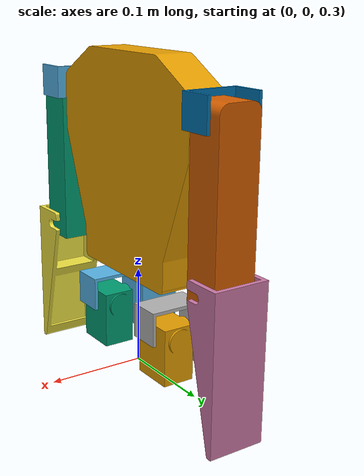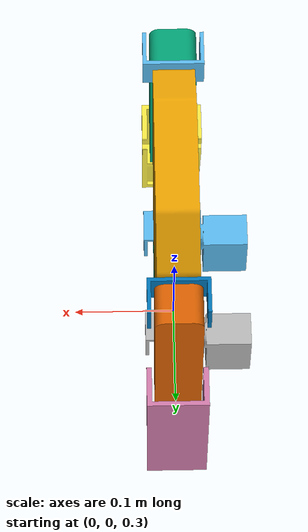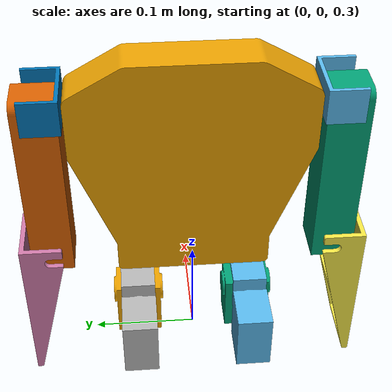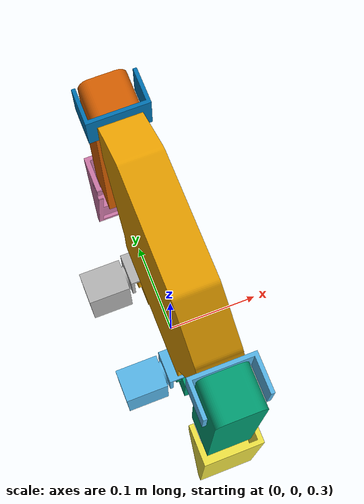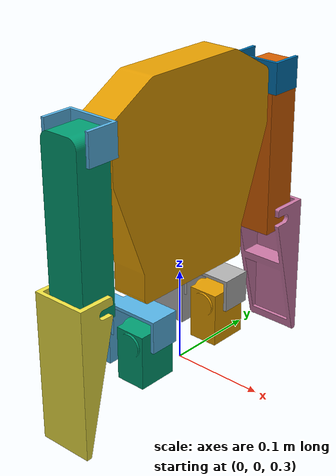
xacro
<?xml version="1.0"?>
<robot name="Bogobot_V1" xmlns:xacro="http://www.ros.org/wiki/xacro">
    <xacro:include filename="humanoid_links.xacro"/>
    <!--LINKS-->
    <!--caja toraxica-->
    <xacro:base_link name="chest" x = "0" y = "0" z = "0.51" row = "0" pitch = "0" yaw = "0"/>

    <!--brazo izquierdo-->
    <xacro:shoulder_link_base name="link_base_left_shoulder" x = "0.0" y = "-0.0185" z = "0.0" row = "0" pitch = "0" yaw = "0"/>
    <xacro:arm_link name="link_left_arm" x = "0.0" y = "0" z = "-0.082" row = "0" pitch = "0" yaw = "0"/>
    <xacro:palm_link name="link_left_palm" x = "0.0" y = "-0.01" z = "-0.062" row = "0" pitch = "0" yaw = "0"/>

    <!--brazo derecho-->
    <xacro:shoulder_link_base name="link_base_right_shoulder" x = "0.0" y = "0.0185" z = "0.0" row = "0" pitch = "0" yaw = "${pi}"/>
    <xacro:arm_link name="link_right_arm" x = "0.0" y = "0" z = "-0.082" row = "0" pitch = "0" yaw = "${pi}"/>
    <xacro:palm_link name="link_right_palm" x = "0.0" y = "0.01" z = "-0.062" row = "0" pitch = "0" yaw = "${pi}"/>

    <!--pierna derecha-->
    <xacro:hip_metal_link name="link_right_hip_metal" x = "0.0" y = "0.0" z = "-0.0175" row = "0" pitch = "0" yaw = "0"/>
    <xacro:motor_double_join name="link_right_hip_motor" x = "0.0" y = "0.0" z = "-0.0225" row = "0" pitch = "0" yaw = "0"/>

    <!--pierna izquierda-->
    <xacro:hip_metal_link name="link_left_hip_metal" x = "0.0" y = "0.0" z = "-0.0175" row = "0" pitch = "0" yaw = "0"/>
    <xacro:motor_double_join name="link_left_hip_motor" x = "0.0" y = "0.0" z = "-0.0225" row = "0" pitch = "0" yaw = "0"/>

    <!--JOINTS-->
    <!--hombro derecho-->
    <joint name="q1" type="revolute">
        <origin rpy="0 0 0" xyz="0 -0.11 0.58" />
        <parent link="chest" />
        <child link="link_base_left_shoulder" />
        <axis xyz="0 1 0" />
        <limit effort="2.5" lower="${-2*pi}" upper="${2*pi}" velocity="5.76"/>
    </joint>
    <!--brazo derecho-->
    <joint name="q3" type="revolute">
        <origin rpy="0 0 0" xyz="0 -0.024 0" />
        <parent link="link_base_left_shoulder" />
        <child link="link_left_arm" />
        <axis xyz="1 0 0" />
        <limit effort="2.5" lower="${-2*pi}" upper="${2*pi}" velocity="5.76"/>
    </joint>
    <!--palma derecho-->
    <joint name="q4" type="revolute">
        <origin rpy="0 0 0" xyz="0 0 -0.164" />
        <parent link="link_left_arm" />
        <child link="link_left_palm" />
        <axis xyz="1 0 0" />
        <limit effort="2.5" lower="${-2*pi}" upper="${2*pi}" velocity="5.76"/>
    </joint>

    <!--hombro izquierdo-->
    <joint name="q2" type="revolute">
        <origin rpy="0 0 0" xyz="0 0.11 0.58" />
        <parent link="chest" />
        <child link="link_base_right_shoulder" />
        <axis xyz="0 1 0" />
        <limit effort="2.5" lower="${-2*pi}" upper="${2*pi}" velocity="5.76"/>
    </joint>
    <!--brazo izquierdo-->
    <joint name="q5" type="revolute">
        <origin rpy="0 0 0" xyz="0 0.024 0" />
        <parent link="link_base_right_shoulder" />
        <child link="link_right_arm" />
        <axis xyz="1 0 0" />
        <limit effort="2.5" lower="${-2*pi}" upper="${2*pi}" velocity="5.76"/>
    </joint>
    <!--palma izquierdo-->
    <joint name="q6" type="revolute">
        <origin rpy="0 0 0" xyz="0 0 -0.164" />
        <parent link="link_right_arm" />
        <child link="link_right_palm" />
        <axis xyz="1 0 0" />
        <limit effort="2.5" lower="${-2*pi}" upper="${2*pi}" velocity="5.76"/>
    </joint>

    <!--pierna derecha-->
    <joint name="q7" type="revolute">
        <origin rpy="0 0 0" xyz="0 0.055 0.3825" />
        <parent link="chest" />
        <child link="link_right_hip_metal" />
        <axis xyz="0 0 1" />
        <limit effort="2.5" lower="${-2*pi}" upper="${2*pi}" velocity="5.76"/>
    </joint>

    <joint name="q9" type="revolute">
        <origin rpy="0 0 0" xyz="0 0 -0.025" />
        <parent link="link_right_hip_metal" />
        <child link="link_right_hip_motor" />
        <axis xyz="1 0 0" />
        <limit effort="2.5" lower="${-2*pi}" upper="${2*pi}" velocity="5.76"/>
    </joint>

    <!--pierna izquierda-->
    <joint name="q8" type="revolute">
        <origin rpy="0 0 0" xyz="0 -0.055 0.3825" />
        <parent link="chest" />
        <child link="link_left_hip_metal" />
        <axis xyz="0 0 1" />
        <limit effort="2.5" lower="${-2*pi}" upper="${2*pi}" velocity="5.76"/>
    </joint>

    <joint name="q10" type="revolute">
        <origin rpy="0 0 0" xyz="0 0 -0.025" />
        <parent link="link_left_hip_metal" />
        <child link="link_left_hip_motor" />
        <axis xyz="1 0 0" />
        <limit effort="2.5" lower="${-2*pi}" upper="${2*pi}" velocity="5.76"/>
    </joint>

</robot>

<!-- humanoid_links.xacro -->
<robot xmlns:xacro="http://www.ros.org/wiki/xacro">

    <!--links-->
	<xacro:macro name="base_link" params="name x y z row pitch yaw">
		<link name="${name}">
			<collision>
                		<origin xyz="${x} ${y} ${z}" rpy="${row} ${pitch} ${yaw}"  />
                		<geometry>
                    			<mesh filename="package://bogobot_rviz/meshes/torax_b4.STL" scale="0.001 0.001 0.001"/>
                		</geometry>
            		</collision>
			<visual>
                		<origin xyz="${x} ${y} ${z}" rpy="${row} ${pitch} ${yaw}" />
                		<geometry>
                				<!--box size="0.055 0.22 0.3"/-->
                				<!--box size="0.055 0.22 0.22"/-->
                    			<mesh filename="package://bogobot_rviz/meshes/torax_b4.STL" scale="0.001 0.001 0.001"/>
                		</geometry>
            		</visual>
		</link>
	</xacro:macro>

	<xacro:macro name="motor_28" params="name x y z row pitch yaw">
		<link name="${name}">
			<collision>
                		<origin xyz="${x} ${y} ${z}" rpy="${row} ${pitch} ${yaw}"  />
                		<geometry>
                    			<mesh filename="package://bogobot_rviz/meshes/MOTOR_28.STL" scale="0.001 0.001 0.001"/>
                		</geometry>
            		</collision>
			<visual>
                		<origin xyz="${x} ${y} ${z}" rpy="${row} ${pitch} ${yaw}" />
                		<geometry>
                    			<mesh filename="package://bogobot_rviz/meshes/MOTOR_28.STL" scale="0.001 0.001 0.001"/>
                		</geometry>
            		</visual>
		</link>
	</xacro:macro>

	<xacro:macro name="shoulder_link_base" params="name x y z row pitch yaw">
		<link name="${name}">
			<collision>
                		<origin xyz="${x} ${y} ${z}" rpy="${row} ${pitch} ${yaw}"  />
                		<geometry>
                    			<mesh filename="package://bogobot_rviz/meshes/metal_hombro_b4.STL" scale="0.001 0.001 0.001"/>
                		</geometry>
            		</collision>
			<visual>
                		<origin xyz="${x} ${y} ${z}" rpy="${row} ${pitch} ${yaw}" />
                		<geometry>
                    			<mesh filename="package://bogobot_rviz/meshes/metal_hombro_b4.STL" scale="0.001 0.001 0.001"/>
                		</geometry>
            		</visual>
		</link>
	</xacro:macro>

	<xacro:macro name="arm_link" params="name x y z row pitch yaw">
		<link name="${name}">
			<collision>
                		<origin xyz="${x} ${y} ${z}" rpy="${row} ${pitch} ${yaw}"  />
                		<geometry>
                    			<mesh filename="package://bogobot_rviz/meshes/brazo_b4.STL" scale="0.001 0.001 0.001"/>
                		</geometry>
            		</collision>
			<visual>
                		<origin xyz="${x} ${y} ${z}" rpy="${row} ${pitch} ${yaw}" />
                		<geometry>
                    			<mesh filename="package://bogobot_rviz/meshes/brazo_b4.STL" scale="0.001 0.001 0.001"/>
                		</geometry>
            		</visual>
		</link>
	</xacro:macro>

	<xacro:macro name="palm_link" params="name x y z row pitch yaw">
		<link name="${name}">
			<collision>
                		<origin xyz="${x} ${y} ${z}" rpy="${row} ${pitch} ${yaw}"  />
                		<geometry>
                    			<mesh filename="package://bogobot_rviz/meshes/palma_b4.STL" scale="0.001 0.001 0.001"/>
                		</geometry>
            		</collision>
			<visual>
                		<origin xyz="${x} ${y} ${z}" rpy="${row} ${pitch} ${yaw}" />
                		<geometry>
                    			<mesh filename="package://bogobot_rviz/meshes/palma_b4.STL" scale="0.001 0.001 0.001"/>
                		</geometry>
            		</visual>
		</link>
	</xacro:macro>

	<xacro:macro name="hip_metal_link" params="name x y z row pitch yaw">
		<link name="${name}">
			<collision>
                		<origin xyz="${x} ${y} ${z}" rpy="${row} ${pitch} ${yaw}"  />
                		<geometry>
                    			<mesh filename="package://bogobot_rviz/meshes/metal_cadera_b4.STL" scale="0.001 0.001 0.001"/>
                		</geometry>
            		</collision>
			<visual>
                		<origin xyz="${x} ${y} ${z}" rpy="${row} ${pitch} ${yaw}" />
                		<geometry>
                    			<mesh filename="package://bogobot_rviz/meshes/metal_cadera_b4.STL" scale="0.001 0.001 0.001"/>
                		</geometry>
            		</visual>
		</link>
	</xacro:macro>

	<xacro:macro name="motor_double_join" params="name x y z row pitch yaw">
		<link name="${name}">
			<collision>
                		<origin xyz="${x} ${y} ${z}" rpy="${row} ${pitch} ${yaw}"  />
                		<geometry>
                    			<mesh filename="package://bogobot_rviz/meshes/motor_doble_join.STL" scale="0.001 0.001 0.001"/>
                		</geometry>
            		</collision>
			<visual>
                		<origin xyz="${x} ${y} ${z}" rpy="${row} ${pitch} ${yaw}" />
                		<geometry>
                    			<mesh filename="package://bogobot_rviz/meshes/motor_doble_join.STL" scale="0.001 0.001 0.001"/>
                		</geometry>
            		</visual>
		</link>
	</xacro:macro>
</robot>
